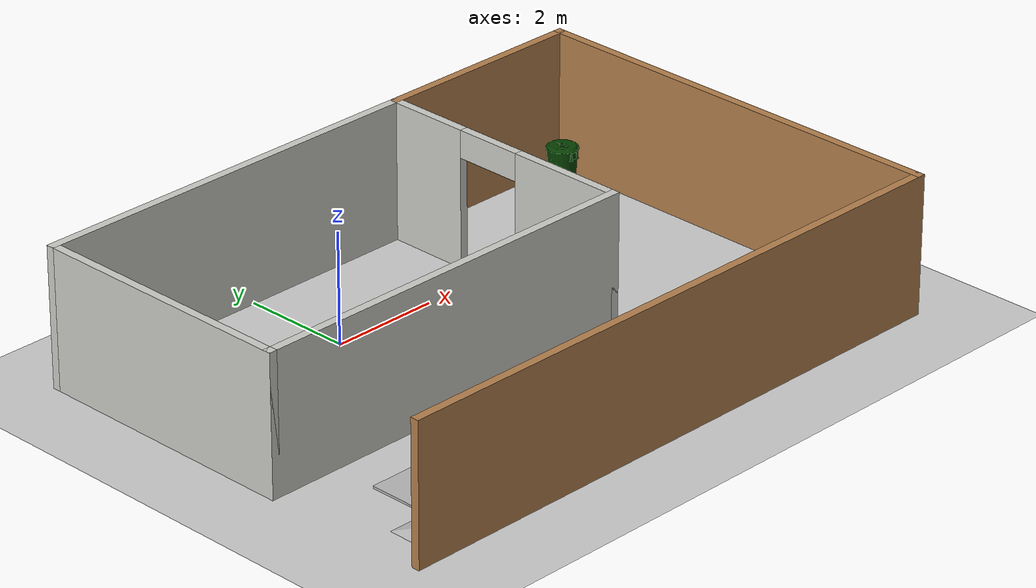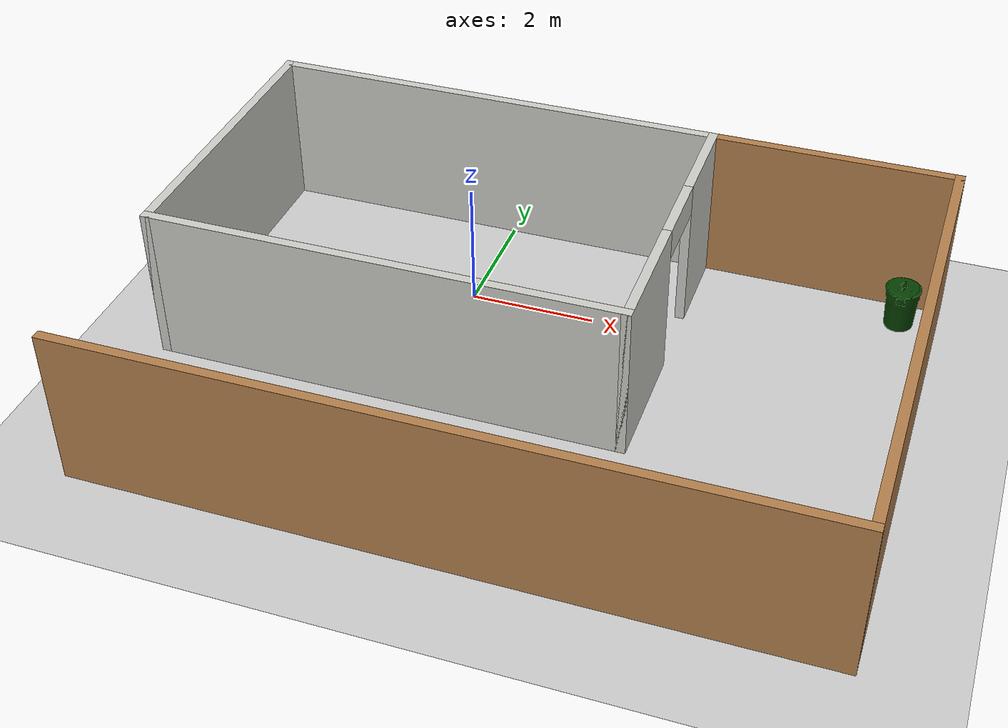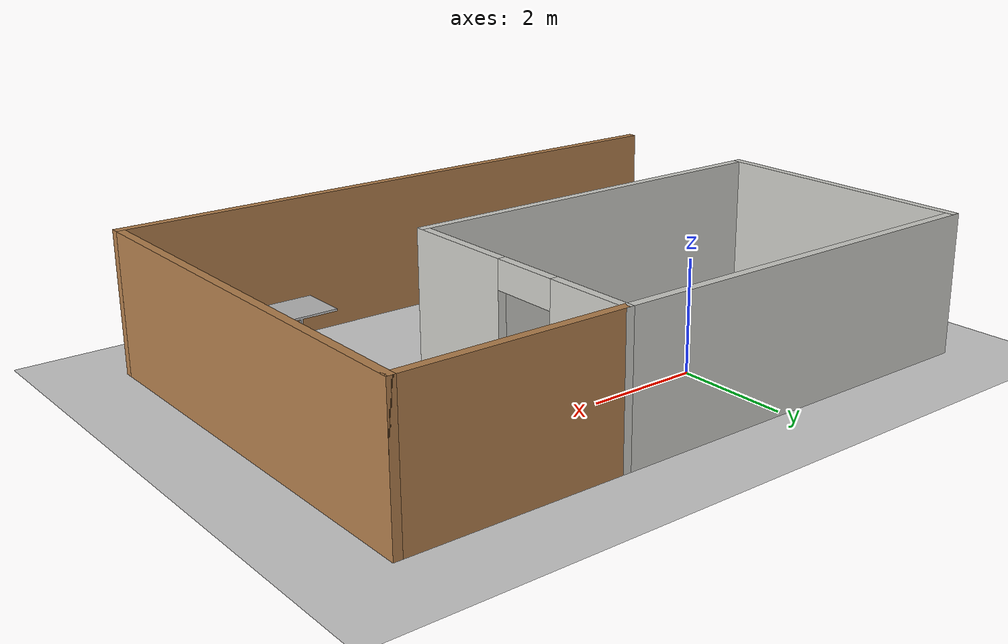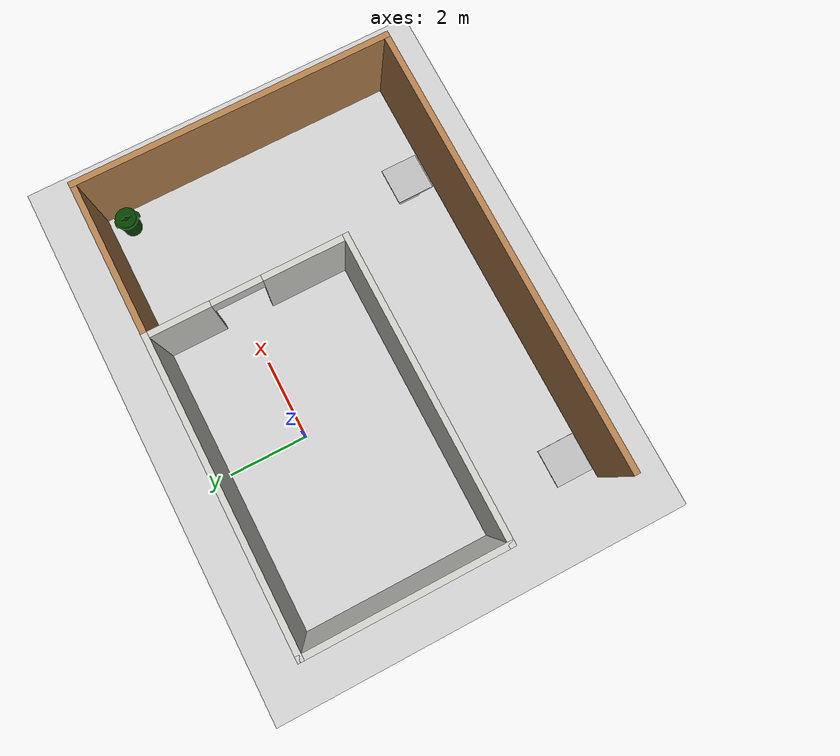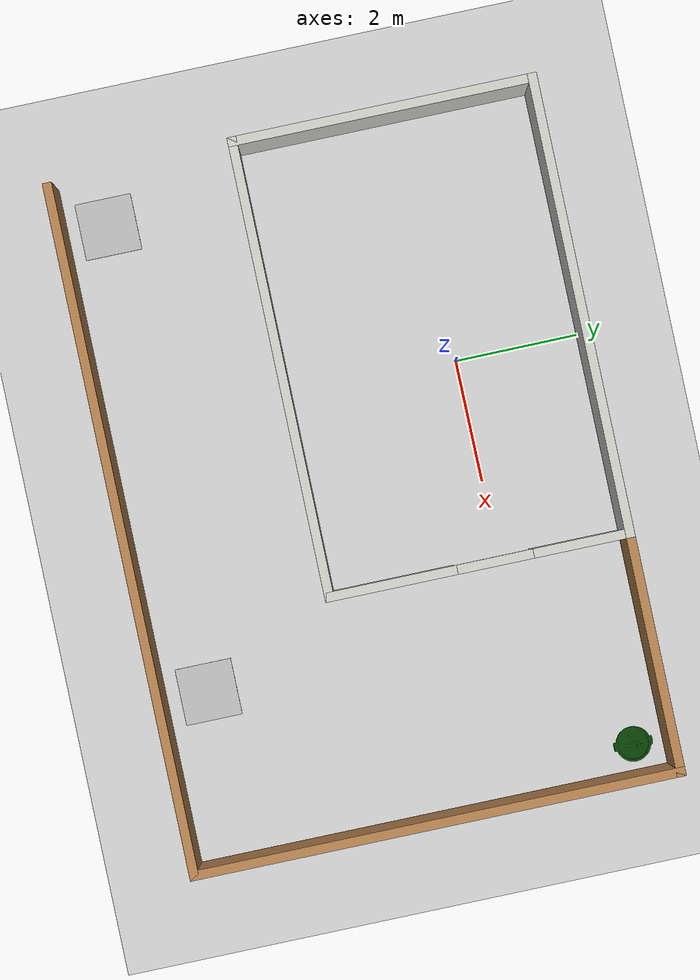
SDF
<sdf version="1.6">
 <world name="default">
  <light name="sun" type="directional">
   <pose>0 0 10 0 -0 0</pose>
   <diffuse>0.8 0.8 0.8 1</diffuse>
   <specular>0.2 0.2 0.2 1</specular>
   <attenuation>
    <range>1000</range>
    <constant>0.9</constant>
    <linear>0.01</linear>
    <quadratic>0.001</quadratic>
   </attenuation>
   <direction>-0.5 0.1 -0.9</direction>
  </light>
  <model name="ground_plane">
   <static>1</static>
   <link name="link">
    <collision name="collision">
     <geometry><plane><normal>0 0 1</normal><size>100 100</size></plane></geometry>
     <surface>
      <contact><collide_bitmask>65535</collide_bitmask></contact>
      <friction><ode><mu>100</mu><mu2>50</mu2></ode></friction>
     </surface>
    </collision>
    <visual name="visual">
     <cast_shadows>0</cast_shadows>
     <geometry><plane><normal>0 0 1</normal><size>100 100</size></plane></geometry>
     <material>
      <script><uri>file://media/materials/scripts/gazebo.material</uri><name>Gazebo/Grey</name></script>
     </material>
    </visual>
   </link>
  </model>
  <gravity>0 0 -9.8</gravity>
  <magnetic_field>6e-06 2.3e-05 -4.2e-05</magnetic_field>
  <atmosphere type="adiabatic"/>
  <physics name="default_physics" default="0" type="ode">
   <max_step_size>0.001</max_step_size>
   <real_time_factor>1</real_time_factor>
   <real_time_update_rate>1000</real_time_update_rate>
  </physics>
  <scene><ambient>0.4 0.4 0.4 1</ambient><background>0.7 0.7 0.7 1</background><shadows>1</shadows></scene>
  <spherical_coordinates>
   <surface_model>EARTH_WGS84</surface_model>
   <latitude_deg>0</latitude_deg>
   <longitude_deg>0</longitude_deg>
   <elevation>0</elevation>
   <heading_deg>0</heading_deg>
  </spherical_coordinates>
  <model name="hospital_demo">
   <pose>1.55053 -1.86018 0 0 -0 0</pose>
   <link name="Wall_0">
    <collision name="Wall_0_Collision">
     <geometry><box><size>5 0.15 2.5</size></box></geometry>
     <pose>0 0 1.25 0 -0 0</pose>
    </collision>
    <visual name="Wall_0_Visual">
     <pose>0 0 1.25 0 -0 0</pose>
     <geometry><box><size>5 0.15 2.5</size></box></geometry>
     <material>
      <script><uri>file://media/materials/scripts/gazebo.material</uri><name>Gazebo/CeilingTiled</name></script>
      <ambient>1 1 1 1</ambient>
     </material>
     <meta><layer>0</layer></meta>
    </visual>
    <pose>-5.6 1.5 0 0 -0 -1.5708</pose>
   </link>
   <link name="Wall_10">
    <collision name="Wall_10_Collision">
     <geometry><box><size>11.25 0.15 2.5</size></box></geometry>
     <pose>0 0 1.25 0 -0 0</pose>
    </collision>
    <visual name="Wall_10_Visual">
     <pose>0 0 1.25 0 -0 0</pose>
     <geometry><box><size>11.25 0.15 2.5</size></box></geometry>
     <material>
      <script><uri>file://media/materials/scripts/gazebo.material</uri><name>Gazebo/Wood</name></script>
      <ambient>1 1 1 1</ambient>
     </material>
     <meta><layer>0</layer></meta>
    </visual>
    <pose>0.05 -3.925 0 0 -0 3.14159</pose>
   </link>
   <link name="Wall_3">
    <collision name="Wall_3_Collision">
     <geometry><box><size>7.5 0.15 2.5</size></box></geometry>
     <pose>0 0 1.25 0 -0 0</pose>
    </collision>
    <visual name="Wall_3_Visual">
     <pose>0 0 1.25 0 -0 0</pose>
     <geometry><box><size>7.5 0.15 2.5</size></box></geometry>
     <material>
      <script><uri>file://media/materials/scripts/gazebo.material</uri><name>Gazebo/CeilingTiled</name></script>
      <ambient>1 1 1 1</ambient>
     </material>
     <meta><layer>0</layer></meta>
    </visual>
    <pose>-1.925 -0.925 0 0 -0 0</pose>
   </link>
   <link name="Wall_4">
    <pose>1.75 1.5 0 0 -0 1.5708</pose>
    <visual name="Wall_4_Visual_0">
     <pose>-1.42984 0 1.25 0 -0 0</pose>
     <geometry><box><size>2.14032 0.15 2.5</size></box></geometry>
     <material>
      <script><uri>file://media/materials/scripts/gazebo.material</uri><name>Gazebo/CeilingTiled</name></script>
      <ambient>1 1 1 1</ambient>
     </material>
     <meta><layer>0</layer></meta>
    </visual>
    <collision name="Wall_4_Collision_0">
     <geometry><box><size>2.14032 0.15 2.5</size></box></geometry>
     <pose>-1.42984 0 1.25 0 -0 0</pose>
    </collision>
    <visual name="Wall_4_Visual_1">
     <pose>1.68679 0 1.25 0 -0 0</pose>
     <geometry><box><size>1.62643 0.15 2.5</size></box></geometry>
     <material>
      <script><uri>file://media/materials/scripts/gazebo.material</uri><name>Gazebo/CeilingTiled</name></script>
      <ambient>1 1 1 1</ambient>
     </material>
     <meta><layer>0</layer></meta>
    </visual>
    <collision name="Wall_4_Collision_1">
     <geometry><box><size>1.62643 0.15 2.5</size></box></geometry>
     <pose>1.68679 0 1.25 0 -0 0</pose>
    </collision>
    <visual name="Wall_4_Visual_2">
     <pose>0.256947 0 2.25 0 -0 0</pose>
     <geometry><box><size>1.23325 0.15 0.5</size></box></geometry>
     <material>
      <script><uri>file://media/materials/scripts/gazebo.material</uri><name>Gazebo/CeilingTiled</name></script>
      <ambient>1 1 1 1</ambient>
     </material>
     <meta><layer>0</layer></meta>
    </visual>
    <collision name="Wall_4_Collision_2">
     <geometry><box><size>1.23325 0.15 0.5</size></box></geometry>
     <pose>0.256947 0 2.25 0 -0 0</pose>
    </collision>
   </link>
   <link name="Wall_5">
    <collision name="Wall_5_Collision">
     <geometry><box><size>7.5 0.15 2.5</size></box></geometry>
     <pose>0 0 1.25 0 -0 0</pose>
    </collision>
    <visual name="Wall_5_Visual">
     <pose>0 0 1.25 0 -0 0</pose>
     <geometry><box><size>7.5 0.15 2.5</size></box></geometry>
     <material>
      <script><uri>file://media/materials/scripts/gazebo.material</uri><name>Gazebo/CeilingTiled</name></script>
      <ambient>1 1 1 1</ambient>
     </material>
     <meta><layer>0</layer></meta>
    </visual>
    <pose>-1.925 3.925 0 0 -0 3.14159</pose>
   </link>
   <link name="Wall_7">
    <collision name="Wall_7_Collision">
     <geometry><box><size>4 0.15 2.5</size></box></geometry>
     <pose>0 0 1.25 0 -0 0</pose>
    </collision>
    <visual name="Wall_7_Visual">
     <pose>0 0 1.25 0 -0 0</pose>
     <geometry><box><size>4 0.15 2.5</size></box></geometry>
     <material>
      <script><uri>file://media/materials/scripts/gazebo.material</uri><name>Gazebo/Wood</name></script>
      <ambient>1 1 1 1</ambient>
     </material>
     <meta><layer>0</layer></meta>
    </visual>
    <pose>3.675 3.925 0 0 -0 0</pose>
   </link>
   <link name="Wall_9">
    <collision name="Wall_9_Collision">
     <geometry><box><size>8 0.15 2.5</size></box></geometry>
     <pose>0 0 1.25 0 -0 0</pose>
    </collision>
    <visual name="Wall_9_Visual">
     <pose>0 0 1.25 0 -0 0</pose>
     <geometry><box><size>8 0.15 2.5</size></box></geometry>
     <material>
      <script><uri>file://media/materials/scripts/gazebo.material</uri><name>Gazebo/Wood</name></script>
      <ambient>1 1 1 1</ambient>
     </material>
     <meta><layer>0</layer></meta>
    </visual>
    <pose>5.6 -0 0 0 -0 -1.5708</pose>
   </link>
   <static>1</static>
  </model>
  <model name="cafe_table">
   <static>1</static>
   <link name="link">
    <collision name="surface">
     <pose>0 0 0.755 0 -0 0</pose>
     <geometry><box><size>0.913 0.913 0.04</size></box></geometry>
    </collision>
    <collision name="column">
     <pose>0 0 0.37 0 -0 0</pose>
     <geometry><box><size>0.042 0.042 0.74</size></box></geometry>
    </collision>
    <collision name="base">
     <pose>0 0 0.02 0 -0 0</pose>
     <geometry><box><size>0.56 0.56 0.04</size></box></geometry>
    </collision>
    <visual name="visual">
     <geometry><mesh><uri>model://cafe_table/meshes/cafe_table.dae</uri></mesh></geometry>
    </visual>
   </link>
   <pose>-3.24441 -5.03146 0 0 -0 0</pose>
  </model>
  <model name="first_2015_trash_can">
   <link name="link">
    <inertial>
     <pose>0 0 0.3683 0 -0 0</pose>
     <mass>4.83076</mass>
     <inertia>
      <ixx>0.281534</ixx>
      <ixy>0</ixy>
      <ixz>0</ixz>
      <iyy>0.281534</iyy>
      <iyz>0</iyz>
      <izz>0.126223</izz>
     </inertia>
    </inertial>
    <visual name="visual">
     <geometry><mesh><uri>model://first_2015_trash_can/meshes/trash_can.dae</uri></mesh></geometry>
    </visual>
    <collision name="collision">
     <geometry><mesh><uri>model://first_2015_trash_can/meshes/trash_can.dae</uri></mesh></geometry>
    </collision>
   </link>
   <pose>6.63833 1.49179 -3e-06 4e-06 8e-06 -0.000331</pose>
  </model>
  <model name="cafe_table_0">
   <static>1</static>
   <link name="link">
    <collision name="surface">
     <pose>0 0 0.755 0 -0 0</pose>
     <geometry><box><size>0.913 0.913 0.04</size></box></geometry>
    </collision>
    <collision name="column">
     <pose>0 0 0.37 0 -0 0</pose>
     <geometry><box><size>0.042 0.042 0.74</size></box></geometry>
    </collision>
    <collision name="base">
     <pose>0 0 0.02 0 -0 0</pose>
     <geometry><box><size>0.56 0.56 0.04</size></box></geometry>
    </collision>
    <visual name="visual">
     <geometry><mesh><uri>model://cafe_table/meshes/cafe_table.dae</uri></mesh></geometry>
    </visual>
   </link>
   <pose>4.39387 -5.00988 0 0 -0 0</pose>
  </model>
 </world>
</sdf>
